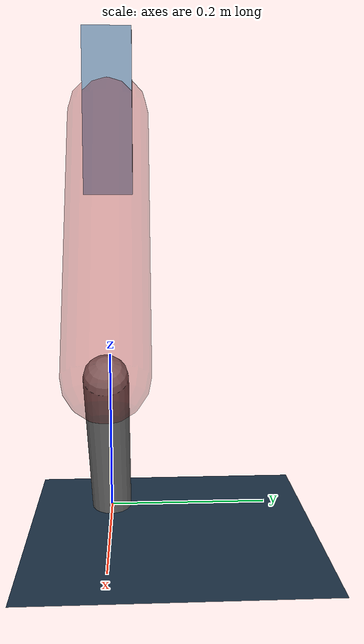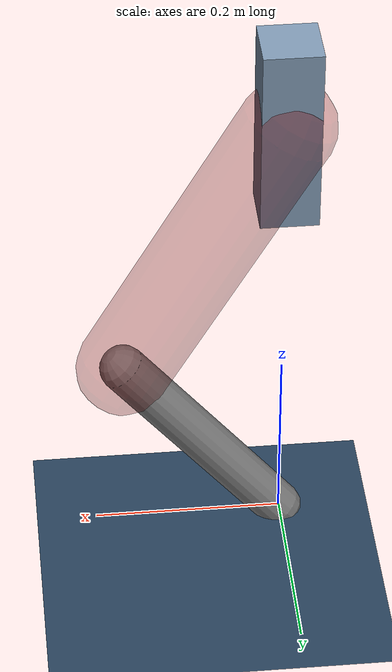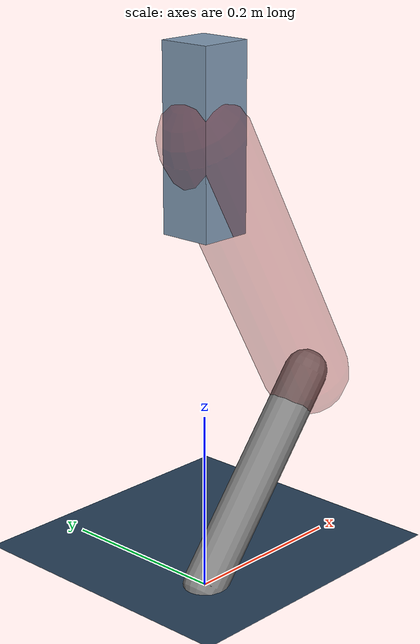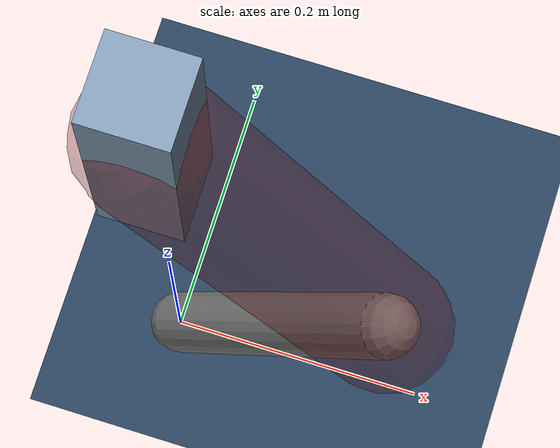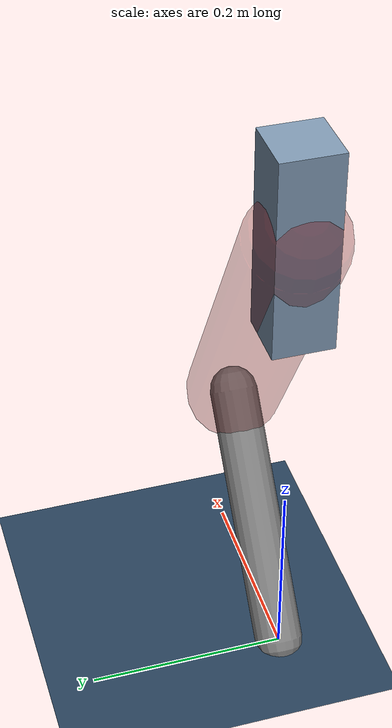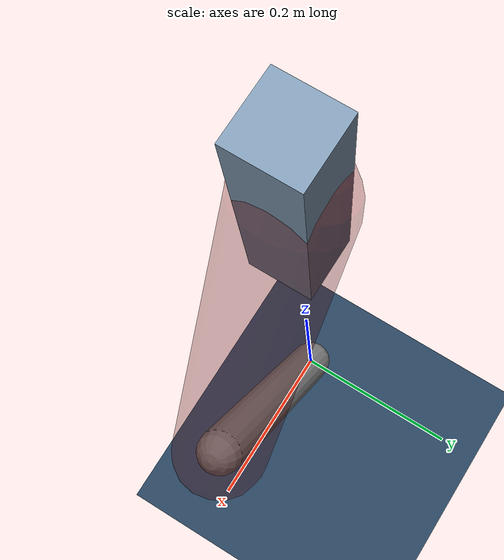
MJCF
<mujoco model="Hopper2D">
	<compiler inertiafromgeom="true" angle="radian" />
	<option timestep="0.001" integrator="implicit" cone="elliptic" solver="Newton" tolerance="1e-10" />

	<default>
		<geom contype="1" conaffinity="1" condim="3" friction="2 0.005 0.0001" solref="0.005 1" />
		<joint limited="true" damping="0.1" />
	</default>

	<asset>
		<texture name="skybox" type="skybox" builtin="gradient" rgb1=".4 .6 .8" rgb2="0 0 0" width="800" height="800" />
		<texture name="grid" type="2d" builtin="checker" rgb1=".1 .2 .3" rgb2=".2 .3 .4" width="300" height="300" mark="edge" markrgb=".2 .3 .4" />
		<material name="ground" texture="grid" texrepeat="1 1" texuniform="true" reflectance="0.1" />
		<material name="leg" rgba="0.5 0.6 0.7 1" />
	</asset>

	<worldbody>

		<geom name="floor" type="plane" size="5 5 0.25" material="ground" />

		<light directional="false" diffuse="0.8 0.8 0.8" specular="0.3 0.3 0.3" pos="0 0 2" dir="0 0 -1" />
		<light mode="targetbodycom" target="base" directional="false" diffuse="0.8 0.8 0.8" specular="0.3 0.3 0.3" pos="0 0 2" dir="0 0 -1" />

		<camera name="fixed" pos="0 -2 1" xyaxes="1 0 0 0 0 1" />
		<camera name="tracking" mode="trackcom" pos="0 -3 1" />

		<body name="root" pos="0 0 0.5042713392885287">
			<joint name="slide_x" type="slide" axis="1 0 0" range="-100 100" />
			<joint name="slide_z" type="slide" axis="0 0 1" range="0 10" />

			<body name="base" pos="0 0 0">
				<geom name="torso" type="box" size="0.03 0.03 0.1" mass="4.604" material="leg" />

				<body name="link1" pos="0 0 0" euler="0 1.0543036500952123 0">
					<joint type="hinge" axis="0 -1 0" pos="0 0 0" name="hinge1" limited="true" range="-3.14 3.14" stiffness="0" damping="0.1" />
					<geom name="thigh" type="capsule" fromto="0 0 0 0.33999770285040554 0 0" size="0.05" rgba="0.5 0 0 0.3" mass="1.0986935679811354" />

					<body name="link2" pos="0.33999770285040554 0 0" euler="0 1.1941580491407189 0">
						<joint type="hinge" axis="0 -1 0" pos="0 0 0" name="hinge2" limited="true" range="-3.14 3.14" stiffness="0" damping="0.1" />
						<geom name="shank" type="capsule" fromto="0 0 0 0.26779688229412185 0 0" size="0.025" mass="0.45713750583529744" />

					</body>
				</body>
			</body>
		</body>
	</worldbody>

	<actuator>
		<motor name="torque1" joint="hinge1" ctrlrange="-117.45749751780528 117.45749751780528" ctrllimited="true" gear="1" />
		<motor name="torque2" joint="hinge2" ctrlrange="-288.3790442870966 288.3790442870966" ctrllimited="true" gear="1" />
	</actuator>
</mujoco>
